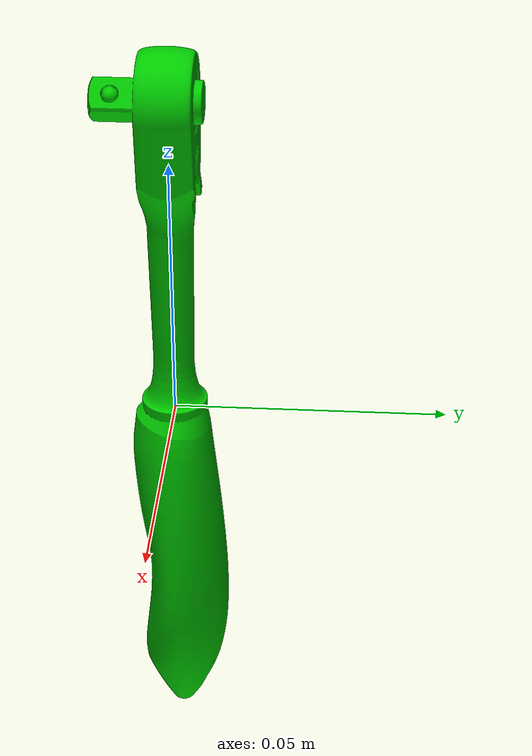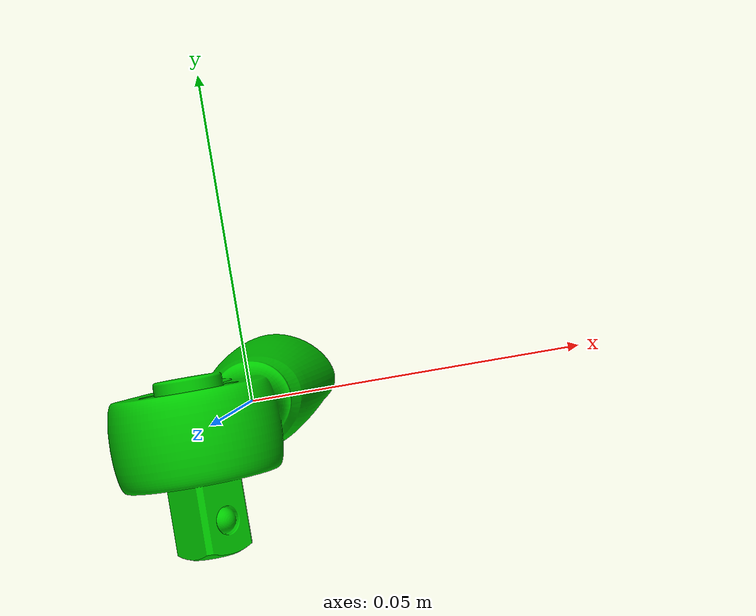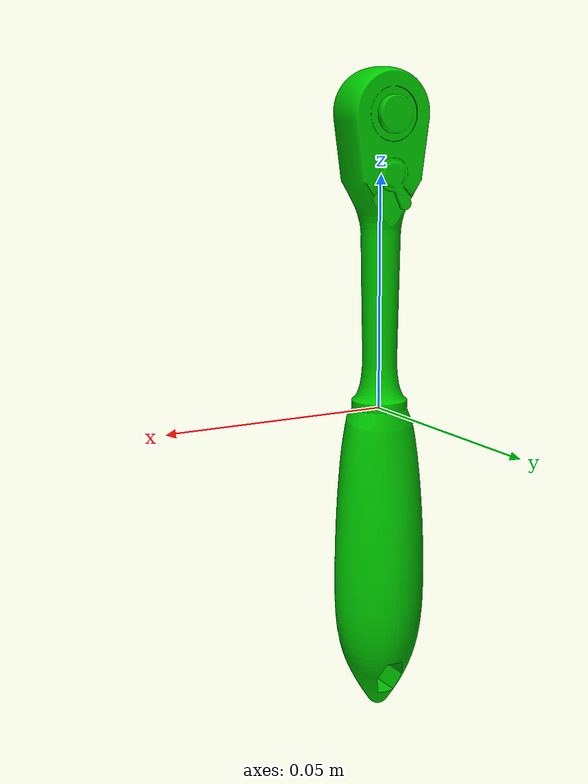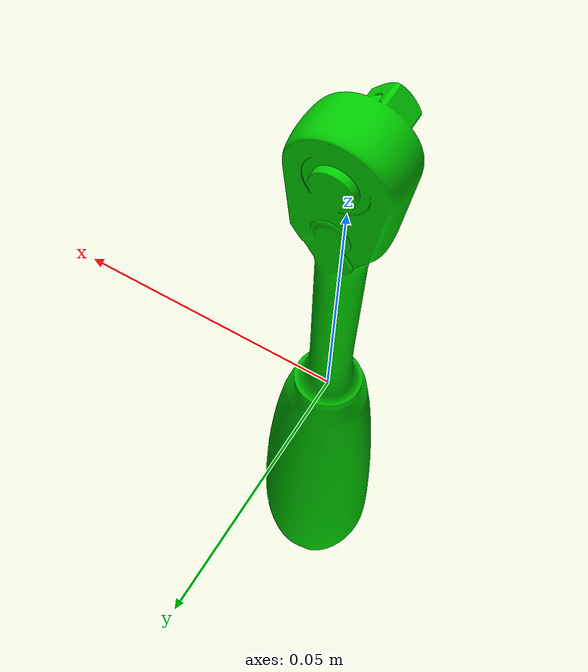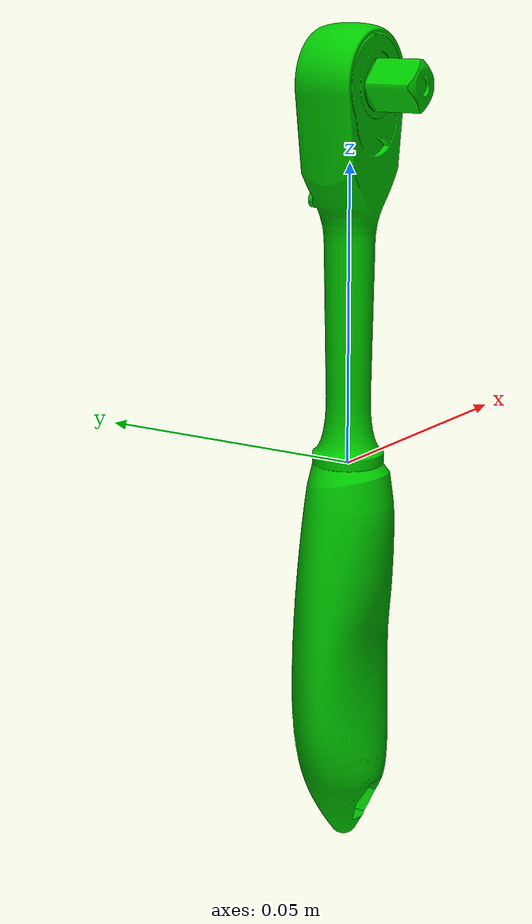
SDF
<?xml version="1.0"?>
<sdf version="1.7">
  <model name="ratchet_wrench">
    <pose>0 0 0 0 0 0</pose>
    <static>false</static>
    <link name="link">
      <inertial>
        <mass>1.0</mass>
        <inertia> <!-- inertias are tricky to compute -->
          <!-- http://gazebosim.org/tutorials?tut=inertia&cat=build_robot -->
          <ixx>0.083</ixx>       <!-- for a box: ixx = 0.083 * mass * (y*y + z*z) -->
          <ixy>0.0</ixy>         <!-- for a box: ixy = 0 -->
          <ixz>0.0</ixz>         <!-- for a box: ixz = 0 -->
          <iyy>0.083</iyy>       <!-- for a box: iyy = 0.083 * mass * (x*x + z*z) -->
          <iyz>0.0</iyz>         <!-- for a box: iyz = 0 -->
          <izz>0.083</izz>       <!-- for a box: izz = 0.083 * mass * (x*x + y*y) -->
        </inertia>
      </inertial>
      <collision name="collision">
        <geometry>
          <mesh>
            <uri>model://tools_old/ratchet-wrench-9.snapshot.1_coarse.STL</uri>
            <scale>0.001 0.001 0.001</scale>
          </mesh>
        </geometry>
      </collision>
      <visual name="visual">
        <geometry>
          <mesh>
            <uri>model://tools_old/ratchet-wrench-9.snapshot.1_fine.STL</uri>
            <scale>0.001 0.001 0.001</scale>
          </mesh>
        </geometry>
        <material>
          <ambient>0.20 0.20 0.20 1.0</ambient>
          <diffuse>0.0 0.8 0.0 1.0</diffuse>    <!-- green base -->
          <specular>0.95 0.95 0.95 1.0</specular>  <!-- shiny highlights -->
        </material>
      </visual>
    </link>
  </model>
</sdf>
